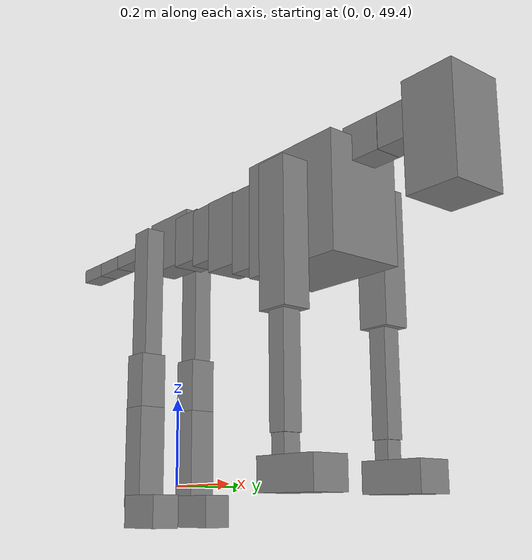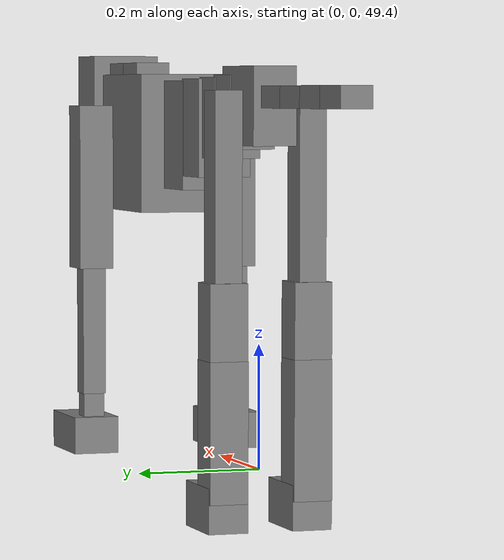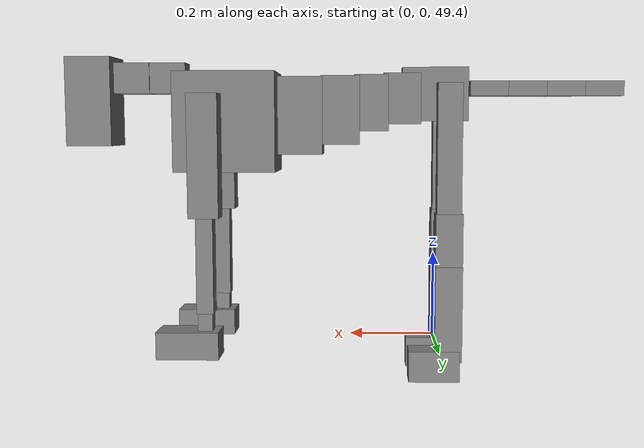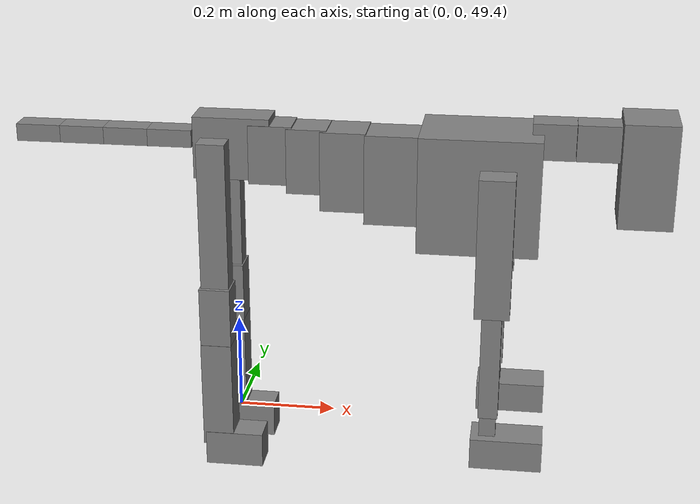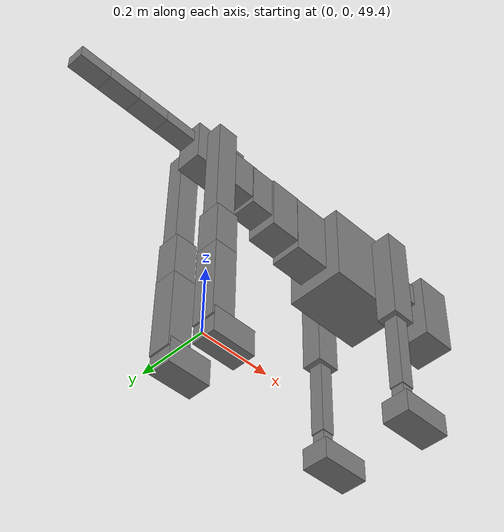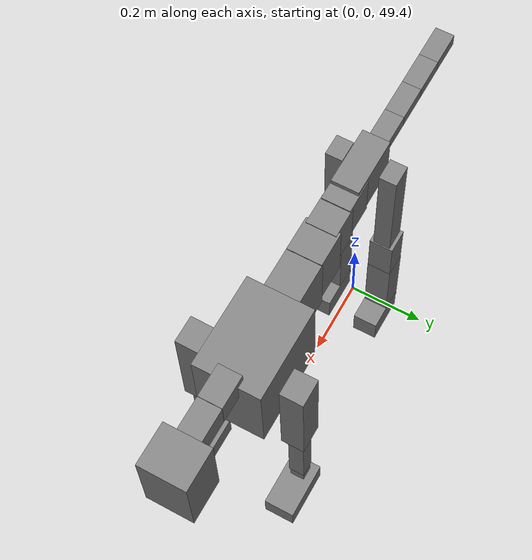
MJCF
<mujoco model="dog">

    <default>
        <joint armature="0.02" stiffness="1" damping="0.2" limited="true"/>
        <geom condim="3" friction="1 0.05 0.05" margin="0.01"/>
        <motor ctrllimited="true" ctrlrange="-1.0 1.0" forcelimited="true" gear="50"/>
    </default>

    <compiler inertiafromgeom="true" angle="radian"/>

    <option timestep="0.016" iterations="50" tolerance="1e-10" solver="Newton" jacobian="dense" cone="pyramidal"/>

    <size nconmax="20000" njmax="60000" nstack="5000000"/>
    <visual>
        <map force="0.1" zfar="30"/>
        <rgba haze="0.15 0.25 0.35 1"/>
        <quality shadowsize="2048"/>
        <global offwidth="800" offheight="800"/>
    </visual>

    <asset>
        <texture type="skybox" builtin="gradient" rgb1="0.3 0.5 0.7" rgb2="0 0 0" width="512" height="512"/>
        <texture name="texplane" type="2d" builtin="checker" rgb1=".2 .3 .4" rgb2=".1 0.15 0.2" width="512" height="512"
                 mark="cross" markrgb=".8 .8 .8"/>
        <texture name="texgeom" type="cube" builtin="flat" mark="cross" width="127" height="1278" rgb1="0.8 0.6 0.4"
                 rgb2="0.8 0.6 0.4" markrgb="1 1 1" random="0.01"/>

        <material name="matplane" reflectance="0.3" texture="texplane" texrepeat="1 1" texuniform="true"/>
        <material name="matgeom" texture="texgeom" texuniform="true" rgba="0.8 0.6 .4 1"/>
    </asset>

    <worldbody>
        <geom name="floor" pos="0 0 0" size="0 0 .25" type="plane" material="matplane" condim="3"/>

        <light directional="false" diffuse=".2 .2 .2" specular="0 0 0" pos="0 0 5" dir="0 0 -1" castshadow="false"/>
        <light mode="targetbodycom" target="torso" directional="false" diffuse=".8 .8 .8" specular="0.3 0.3 0.3"
               pos="0 0 4.0" dir="0 0 -1"/>

        <body name="root" pos="0 0 50">
            <freejoint name="root_1"/>
            <geom type="box" pos="0 0 -0.02" size="0.0774  0.0358  0.063" density="2030"/>

            <body name="spine1" pos="0.054 0 0">
                <joint name="spine1_y" axis="0 1 0" range="0 0.7" limited="true"/>
                <geom type="box" pos="0.02375 0 -0.03" size="0.04375  0.0375  0.05985" density="2030"/>

                <body name="spine2" pos="0.0612 0 0">
                    <joint name="spine2_y" axis="0 1 0" range="-0.15 0.15" limited="true"/>
                    <geom type="box" pos="0.03555  0  -0.04" size="0.04055  0.039  0.06615" density="2030"/>

                    <body name="spine3" pos="0.0730 0 0">
                        <joint name="spine3_y" axis="0 1 0" range="-0.15 0.15" limited="true"/>
                        <geom type="box" pos="0.03555  0  -0.057" size="0.04555  0.0445  0.081" density="2030"/>

                        <body name="spine4" pos="0.0780 0 0">
                            <joint name="spine4_y" axis="0 1 0" range="-0.15 0.15" limited="true"/>
                            <geom type="box" pos="0.05265  0  -0.07" size="0.05265  0.045  0.09135" density="2030"/>

                            <body name="torso" pos="0.1082 0 0">
                                <joint name="torso_y" axis="0 1 0" range="-0.15 0.15" limited="true"/>
                                <geom type="box" pos="0.11925  0  -0.085" size="0.11925  0.085  0.11745"
                                      density="2030"/>

                                <body name="neck1" pos="0.2160  0   0.0180">
                                    <joint name="neck1_y" axis="0 1 0" range="-1.2  -1" limited="true"/>
                                    <geom type="box" pos="0.0423  0  0" size="0.0423  0.03  0.036" density="2325"/>

                                    <body name="neck2" pos="0.0853  0  0">
                                        <joint name="neck2_y" axis="0 1 0" range="0.1  0" limited="true"/>
                                        <geom type="box" pos="0.0423  0  0" size="0.0423  0.03  0.036" density="2325"/>

                                        <body name="head" pos="0.0853  0  0">
                                            <joint name="head_y" axis="0 1 0" range="-0.3  -0.2" limited="true"/>
                                            <geom type="box" pos="0.0531  0  -0.055" size="0.0531  0.06  0.1044"
                                                  density="4030"/>

                                        </body>
                                    </body>
                                </body>

                                <body name="front_shoulder" pos="0.156  0   -0.0480">
                                    <joint name="front_shoulder_y" axis="0 1 0" range="-1 1.5" limited="true"/>
                                    <geom type="box" pos="0 0.13 -0.1144" size="0.0346  0.0296  0.1410" density="1158"/>
                                    <geom type="box" pos="0 -0.13 -0.1144" size="0.0346  0.0296  0.1410"
                                          density="1158"/>

                                    <body name="front_elbow" pos="0  0  -0.2288">
                                        <joint name="front_elbow_y" axis="0 1 0" range="-2 0" limited="true"/>
                                        <geom type="box" pos="0 0.13 -0.1227" size="0.0196  0.0200  0.1227"
                                              density="1081"/>
                                        <geom type="box" pos="0 -0.13 -0.1227" size="0.0196  0.0200  0.1227"
                                              density="1081"/>

                                        <body name="front_wrist" pos="0  0  -0.2455">
                                            <joint name="front_wrist_y" axis="0 1 0" range="-0.2 0" limited="true"/>
                                            <geom type="box" pos="0 0.13 -0.0274" size="0.0165  0.0183  0.0406"
                                                  density="1664"/>
                                            <geom type="box" pos="0 -0.13 -0.0274" size="0.0165  0.0183  0.0406"
                                                  density="1664"/>

                                            <body name="front_finger_end" pos="0  0  -0.0549">
                                                <joint name="front_finger_y" axis="0 1 0" range="-0.4 1"
                                                       limited="true"/>
                                                <geom type="box" pos="0.0391  0.13  -0.0166"
                                                      size="0.0716  0.0391  0.0316" density="1515"/>
                                                <geom type="box" pos="0.0391  -0.13  -0.0166"
                                                      size="0.0716  0.0391  0.0316" density="1515"/>

                                            </body>

                                        </body>
                                    </body>
                                </body>

                            </body>
                        </body>
                    </body>
                </body>
            </body>

            <body name="back_hip" pos="-0.03 0 -0.018">
                <joint name="back_hip_y" axis="0 1 0" range="-1.5 0.3" limited="true"/>
                <geom type="box" pos="0 0.07 -0.1479" size="0.0286  0.0224  0.1707" density="1154"/>
                <geom type="box" pos="0 -0.07 -0.1479" size="0.0286  0.0224  0.1707" density="1154"/>

                <body name="back_knee" pos="0  0  -0.2957">
                    <joint name="back_knee_y" axis="0 1 0" range="0 2.8" limited="true"/>
                    <geom type="box" pos="0 0.07 -0.0594" size="0.0315  0.0311  0.0749" density="1227"/>
                    <geom type="box" pos="0 -0.07 -0.0594" size="0.0315  0.0311  0.0749" density="1227"/>

                    <body name="back_ankle" pos="0  0  -0.1187">
                        <joint name="back_ankle_y" axis="0 1 0" range="-2.2 0" limited="true"/>
                        <geom type="box" pos="0 0.07 -0.1015" size="0.0317  0.0317  0.1128" density="1284"/>
                        <geom type="box" pos="0 -0.07 -0.1015" size="0.0317  0.0317  0.1128" density="1284"/>

                        <body name="back_toe_end" pos="0  0  -0.2031">
                            <joint name="back_toe_y" axis="0 1 0" range="-0.4 1" limited="true"/>
                            <geom type="box" pos="0.0326  0.07  -0.0215" size="0.0597  0.0326  0.0365" density="1515"/>
                            <geom type="box" pos="0.0326  -0.07  -0.0215" size="0.0597  0.0326  0.0365" density="1515"/>

                        </body>
                    </body>
                </body>
            </body>

            <body name="tail1" pos="-0.074 0 -0.006">
                <joint name="tail1_y" axis="0 1 0" range="-0.2 0.2" limited="true"/>
                <geom type="box" pos="-0.0536  0  0" size="0.045  0.025  0.0175" density="1587"/>

                <body name="tail2" pos="-0.09 0 0">
                    <joint name="tail2_y" axis="0 1 0" range="-0.2 0.2" limited="true"/>
                    <geom type="box" pos="-0.0536  0  0" size="0.045  0.025  0.0175" density="1587"/>

                    <body name="tail3" pos="-0.09 0 0">
                        <joint name="tail3_y" axis="0 1 0" range="-0.2 0.2" limited="true"/>
                        <geom type="box" pos="-0.0536  0  0" size="0.045  0.025  0.0175" density="1587"/>

                        <body name="tail4" pos="-0.09 0 0">
                            <joint name="tail4_y" axis="0 1 0" range="-0.2 0.2" limited="true"/>
                            <geom type="box" pos="-0.0536  0  0" size="0.045  0.025  0.0175" density="1587"/>

                        </body>
                    </body>
                </body>
            </body>
        </body>
    </worldbody>

    <actuator>
        <motor joint="spine1_y" forcerange="-150 150     "/>
        <motor joint="spine2_y" forcerange="-150 150     "/>
        <motor joint="spine3_y" forcerange="-150 150     "/>
        <motor joint="spine4_y" forcerange="-150 150     "/>
        <motor joint="torso_y" forcerange="-150 150     "/>
        <motor joint="neck1_y" forcerange="-100 100       "/>
        <motor joint="neck2_y" forcerange="-100 100       "/>
        <motor joint="head_y" forcerange="-150 150       "/>
        <motor joint="front_shoulder_y" forcerange="-131.96 165.43"/>
        <motor joint="front_elbow_y" forcerange="-105.75 139.96"/>
        <motor joint="front_wrist_y" forcerange="-60.24 86.16"/>
        <motor joint="front_finger_y" forcerange="-79.91 88.46"/>
        <motor joint="back_hip_y" forcerange="-239.69 259.10"/>
        <motor joint="back_knee_y" forcerange="-296.13 356.08"/>
        <motor joint="back_angle_y" forcerange="-206.62 201.33"/>
        <motor joint="back_toe_y" forcerange="-127.46 53.12"/>
        <motor joint="tail1_y" forcerange="-50 50     "/>
        <motor joint="tail2_y" forcerange="-50 50     "/>
        <motor joint="tail3_y" forcerange="-50 50     "/>
        <motor joint="tail4_y" forcerange="-50 50     "/>
    </actuator>
</mujoco>
